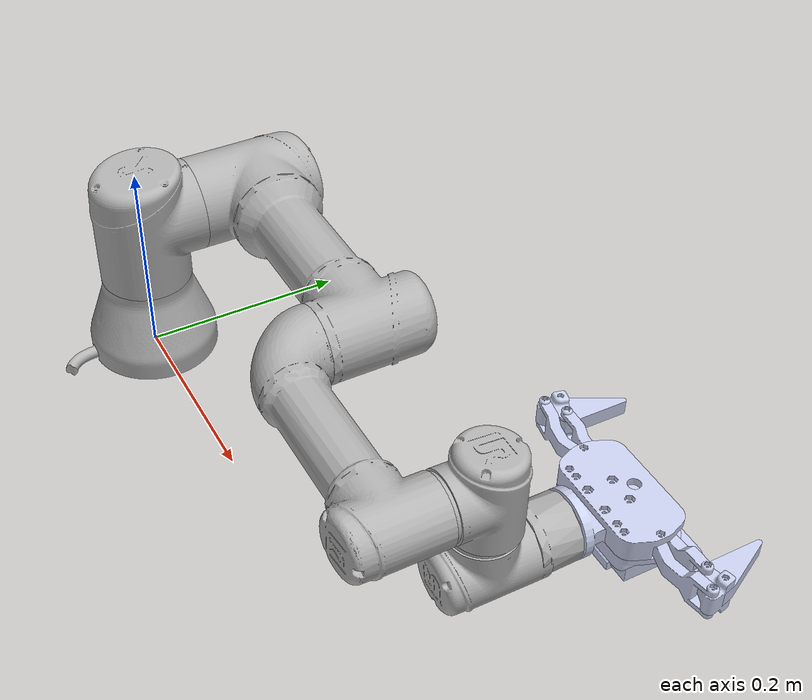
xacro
<?xml version="1.0"?>
<robot xmlns:xacro="http://ros.org/wiki/xacro"
       name="ur3" >

  <!-- world -->
  <link name="world" />

  <!-- common stuff -->
  <xacro:include filename="$(find ur_description)/urdf/common.gazebo.xacro" />

  <!-- ur3 -->

  <xacro:include filename="$(find ur3_with_gripper_ur_moveit_config)/urdf/arm.urdf" />
  <xacro:ur3_robot parent="world" prefix="" joint_limited="false">
	<origin xyz="0.0 0.0 0.0" rpy="0.0 0.0 0.0" />
  </xacro:ur3_robot>

  <!-- gripper -->
  <xacro:include filename="$(find ur3_with_gripper_ur_moveit_config)/urdf/gripper.urdf" />
  <xacro:gripper_v5 parent="ee_link" >
	<origin xyz="0.055 0.0 0.015" rpy="0 0 1.5708" />
  </xacro:gripper_v5>

</robot>

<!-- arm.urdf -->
<robot name="ur3" xmlns:xacro="http://ros.org/wiki/xacro">

<!--
  Author: Felix Messmer
-->

  <xacro:include filename="$(find ur_description)/urdf/ur.transmission.xacro" />
  <xacro:include filename="$(find ur_description)/urdf/ur.gazebo.xacro" />

  <!-- Inertia parameters -->
  <xacro:property name="base_mass" value="2.0" />  <!-- This mass might be incorrect -->
  <xacro:property name="shoulder_mass" value="2.0" />
  <xacro:property name="upper_arm_mass" value="3.42" />
  <xacro:property name="forearm_mass" value="1.26" />
  <xacro:property name="wrist_1_mass" value="0.8" />
  <xacro:property name="wrist_2_mass" value="0.8" />
  <xacro:property name="wrist_3_mass" value="0.35" />

  <xacro:property name="shoulder_cog" value="0.0 -0.02 0.0" />
  <xacro:property name="upper_arm_cog" value="0.13 0.0 0.1157" />
  <xacro:property name="forearm_cog" value="0.05 0.0 0.0238" />
  <xacro:property name="wrist_1_cog" value="0.0 0.0 0.01" />
  <xacro:property name="wrist_2_cog" value="0.0 0.0 0.01" />
  <xacro:property name="wrist_3_cog" value="0.0 0.0 -0.02" />

  <!-- Kinematic model -->
  <!-- Properties from urcontrol.conf -->
  <xacro:property name="ur3_d1" value="0.1519" />
  <xacro:property name="ur3_a2" value="-0.24365" />
  <xacro:property name="ur3_a3" value="-0.21325" />
  <xacro:property name="ur3_d4" value="0.11235" />
  <xacro:property name="ur3_d5" value="0.08535" />
  <xacro:property name="ur3_d6" value="0.0819" />

  <!-- Arbitrary offsets for shoulder/elbow joints -->
  <xacro:property name="shoulder_offset" value="0.1198" />  <!-- measured from model -->
  <xacro:property name="elbow_offset" value="-0.0925" /> <!-- measured from model -->

  <!-- link lengths used in model -->
  <xacro:property name="shoulder_height" value="${ur3_d1}" />
  <xacro:property name="upper_arm_length" value="${-ur3_a2}" />
  <xacro:property name="forearm_length" value="${-ur3_a3}" />
  <xacro:property name="wrist_1_length" value="${ur3_d4 - elbow_offset - shoulder_offset}" />
  <xacro:property name="wrist_2_length" value="${ur3_d5}" />
  <xacro:property name="wrist_3_length" value="${ur3_d6}" />

  <xacro:macro name="cylinder_inertial" params="radius length mass *origin">
    <inertial>
      <mass value="${mass}" />
      <xacro:insert_block name="origin" />
      <inertia ixx="${0.0833333 * mass * (3 * radius * radius + length * length)}" ixy="0.0" ixz="0.0"
        iyy="${0.0833333 * mass * (3 * radius * radius + length * length)}" iyz="0.0"
        izz="${0.5 * mass * radius * radius}" />
    </inertial>
  </xacro:macro>

  <xacro:macro name="ur3_robot" params="parent prefix joint_limited
     shoulder_pan_lower_limit:=${-pi}    shoulder_pan_upper_limit:=${pi}
     shoulder_lift_lower_limit:=${-pi}    shoulder_lift_upper_limit:=${pi}
     elbow_joint_lower_limit:=${-pi}    elbow_joint_upper_limit:=${pi}
     wrist_1_lower_limit:=${-pi}    wrist_1_upper_limit:=${pi}
     wrist_2_lower_limit:=${-pi}    wrist_2_upper_limit:=${pi}
     wrist_3_lower_limit:=${-pi}    wrist_3_upper_limit:=${pi} *origin">

<!-- world - base_link joint -->
	<joint name="arm_world_joint" type="fixed" >
			<xacro:insert_block name="origin" />
			<parent link="${parent}" />
			<child link="base_link" />
	</joint>

    <link name="${prefix}base_link" >
      <visual>
        <geometry>
          <mesh filename="package://ur_description/meshes/ur3/visual/base.dae"/>
        </geometry>
        <material name="LightGrey">
          <color rgba="0.7 0.7 0.7 1.0"/>
        </material>
      </visual>
      <collision>
        <geometry>
          <mesh filename="package://ur_description/meshes/ur3/collision/base.stl"/>
        </geometry>
      </collision>
      <xacro:cylinder_inertial radius="0.075" length="0.038" mass="${base_mass}">
        <origin xyz="0.0 0.0 0.0" rpy="0 0 0" />
      </xacro:cylinder_inertial>
    </link>

    <joint name="${prefix}shoulder_pan_joint" type="revolute">
      <parent link="${prefix}base_link" />
      <child link = "${prefix}shoulder_link" />
      <origin xyz="0.0 0.0 ${shoulder_height}" rpy="0.0 0.0 0.0" />
      <axis xyz="0 0 1" />
      <xacro:unless value="${joint_limited}">
        <limit lower="${-2.0 * pi}" upper="${2.0 * pi}" effort="330.0" velocity="2.16"/>
      </xacro:unless>
      <xacro:if value="${joint_limited}">
        <limit lower="${shoulder_pan_lower_limit}" upper="${shoulder_pan_upper_limit}" effort="330.0" velocity="2.16"/>
      </xacro:if>
      <dynamics damping="0.0" friction="0.0"/>
    </joint>

    <link name="${prefix}shoulder_link">
      <visual>
        <geometry>
          <mesh filename="package://ur_description/meshes/ur3/visual/shoulder.dae"/>
        </geometry>
        <material name="LightGrey">
          <color rgba="0.7 0.7 0.7 1.0"/>
        </material>
      </visual>
      <collision>
        <geometry>
          <mesh filename="package://ur_description/meshes/ur3/collision/shoulder.stl"/>
        </geometry>
      </collision>
      <xacro:cylinder_inertial radius="0.075" length="0.178" mass="${shoulder_mass}">
        <origin xyz="0.0 0.0 0.0" rpy="0 0 0" />
      </xacro:cylinder_inertial>
    </link>

    <joint name="${prefix}shoulder_lift_joint" type="revolute">
      <parent link="${prefix}shoulder_link" />
      <child link = "${prefix}upper_arm_link" />
      <origin xyz="0.0 ${shoulder_offset} 0.0" rpy="0.0 ${pi / 2.0} 0.0" />
      <axis xyz="0 1 0" />
      <xacro:unless value="${joint_limited}">
        <limit lower="${-2.0 * pi}" upper="${2.0 * pi}" effort="330.0" velocity="2.16"/>
      </xacro:unless>
      <xacro:if value="${joint_limited}">
        <limit lower="${shoulder_lift_lower_limit}" upper="${shoulder_lift_upper_limit}" effort="330.0" velocity="2.16"/>
      </xacro:if>
      <dynamics damping="0.0" friction="0.0"/>
    </joint>

    <link name="${prefix}upper_arm_link">
      <visual>
        <geometry>
          <mesh filename="package://ur_description/meshes/ur3/visual/upperarm.dae"/>
        </geometry>
        <material name="LightGrey">
          <color rgba="0.7 0.7 0.7 1.0"/>
        </material>
      </visual>
      <collision>
        <geometry>
          <mesh filename="package://ur_description/meshes/ur3/collision/upperarm.stl"/>
        </geometry>
      </collision>
      <xacro:cylinder_inertial radius="0.075" length="${-ur3_a2}" mass="${upper_arm_mass}">
        <origin xyz="0.0 0.0 ${-ur3_a2/2.0}" rpy="0 0 0" />
      </xacro:cylinder_inertial>
    </link>

    <joint name="${prefix}elbow_joint" type="revolute">
      <parent link="${prefix}upper_arm_link" />
      <child link = "${prefix}forearm_link" />
      <origin xyz="0.0 ${elbow_offset} ${upper_arm_length}" rpy="0.0 0.0 0.0" />
      <axis xyz="0 1 0" />
      <xacro:unless value="${joint_limited}">
        <limit lower="${-pi}" upper="${pi}" effort="150.0" velocity="3.15"/>
      </xacro:unless>
      <xacro:if value="${joint_limited}">
        <limit lower="${elbow_joint_lower_limit}" upper="${elbow_joint_upper_limit}" effort="150.0" velocity="3.15"/>
      </xacro:if>
      <dynamics damping="0.0" friction="0.0"/>
    </joint>

    <link name="${prefix}forearm_link">
      <visual>
         <geometry>
          <mesh filename="package://ur_description/meshes/ur3/visual/forearm.dae"/>
        </geometry>
        <material name="LightGrey">
          <color rgba="0.7 0.7 0.7 1.0"/>
        </material>
      </visual>
      <collision>
        <geometry>
          <mesh filename="package://ur_description/meshes/ur3/collision/forearm.stl"/>
        </geometry>
      </collision>
      <xacro:cylinder_inertial radius="0.075" length="${-ur3_a3}" mass="${forearm_mass}">
        <origin xyz="0.0 0.0 ${-ur3_a3/2.0}" rpy="0 0 0" />
      </xacro:cylinder_inertial>
    </link>

    <joint name="${prefix}wrist_1_joint" type="revolute">
      <parent link="${prefix}forearm_link" />
      <child link = "${prefix}wrist_1_link" />
      <origin xyz="0.0 0.0 ${forearm_length}" rpy="0.0 ${pi / 2.0} 0.0" />
      <axis xyz="0 1 0" />
      <xacro:unless value="${joint_limited}">
        <limit lower="${-2.0 * pi}" upper="${2.0 * pi}" effort="54.0" velocity="3.2"/>
      </xacro:unless>
      <xacro:if value="${joint_limited}">
        <limit lower="${wrist_1_lower_limit}" upper="${wrist_1_upper_limit}" effort="54.0" velocity="3.2"/>
      </xacro:if>
      <dynamics damping="0.0" friction="0.0"/>
    </joint>

    <link name="${prefix}wrist_1_link">
      <visual>
        <geometry>
          <mesh filename="package://ur_description/meshes/ur3/visual/wrist1.dae"/>
        </geometry>
        <material name="LightGrey">
          <color rgba="0.7 0.7 0.7 1.0"/>
        </material>
      </visual>
      <collision>
        <geometry>
          <mesh filename="package://ur_description/meshes/ur3/collision/wrist1.stl"/>
        </geometry>
      </collision>
      <xacro:cylinder_inertial radius="0.075" length="0.12" mass="${wrist_1_mass}">
        <origin xyz="0.0 0.0 0.0" rpy="0 0 0" />
      </xacro:cylinder_inertial>
    </link>

    <joint name="${prefix}wrist_2_joint" type="revolute">
      <parent link="${prefix}wrist_1_link" />
      <child link = "${prefix}wrist_2_link" />
      <origin xyz="0.0 ${wrist_1_length} 0.0" rpy="0.0 0.0 0.0" />
      <axis xyz="0 0 1" />
      <xacro:unless value="${joint_limited}">
        <limit lower="${-2.0 * pi}" upper="${2.0 * pi}" effort="54.0" velocity="3.2"/>
      </xacro:unless>
      <xacro:if value="${joint_limited}">
        <limit lower="${wrist_2_lower_limit}" upper="${wrist_2_upper_limit}" effort="54.0" velocity="3.2"/>
      </xacro:if>
      <dynamics damping="0.0" friction="0.0"/>
    </joint>

    <link name="${prefix}wrist_2_link">
      <visual>
        <geometry>
          <mesh filename="package://ur_description/meshes/ur3/visual/wrist2.dae"/>
        </geometry>
        <material name="LightGrey">
          <color rgba="0.7 0.7 0.7 1.0"/>
        </material>
      </visual>
      <collision>
        <geometry>
          <mesh filename="package://ur_description/meshes/ur3/collision/wrist2.stl"/>
        </geometry>
      </collision>
      <xacro:cylinder_inertial radius="0.075" length="0.12" mass="${wrist_2_mass}">
        <origin xyz="0.0 0.0 0.0" rpy="0 0 0" />
      </xacro:cylinder_inertial>
    </link>

    <joint name="${prefix}wrist_3_joint" type="revolute">
      <parent link="${prefix}wrist_2_link" />
      <child link = "${prefix}wrist_3_link" />
      <origin xyz="0.0 0.0 ${wrist_2_length}" rpy="0.0 0.0 0.0" />
      <axis xyz="0 1 0" />
      <xacro:unless value="${joint_limited}">
        <limit lower="${-2.0 * pi}" upper="${2.0 * pi}" effort="54.0" velocity="3.2"/>
      </xacro:unless>
      <xacro:if value="${joint_limited}">
        <limit lower="${wrist_3_lower_limit}" upper="${wrist_3_upper_limit}" effort="54.0" velocity="3.2"/>
      </xacro:if>
      <dynamics damping="0.0" friction="0.0"/>
    </joint>

    <link name="${prefix}wrist_3_link">
      <visual>
        <geometry>
          <mesh filename="package://ur_description/meshes/ur3/visual/wrist3.dae"/>
        </geometry>
        <material name="LightGrey">
          <color rgba="0.7 0.7 0.7 1.0"/>
        </material>
      </visual>
      <collision>
        <geometry>
          <mesh filename="package://ur_description/meshes/ur3/collision/wrist3.stl"/>
        </geometry>
      </collision>
      <xacro:cylinder_inertial radius="0.075" length="0.12" mass="${wrist_3_mass}">
        <origin xyz="0.0 0.0 0.0" rpy="0 0 0" />
      </xacro:cylinder_inertial>
    </link>

    <joint name="${prefix}ee_fixed_joint" type="fixed">
      <parent link="${prefix}wrist_3_link" />
      <child link = "${prefix}ee_link" />
      <origin xyz="0.0 ${wrist_3_length} 0.0" rpy="0.0 0.0 ${pi/2.0}" />
    </joint>

    <link name="${prefix}ee_link">
      <collision>
        <geometry>
          <box size="0.01 0.01 0.01"/>
        </geometry>
        <origin rpy="0 0 0" xyz="-0.01 0 0"/>
      </collision>
    </link>

    <xacro:ur_arm_transmission prefix="${prefix}" />
    <xacro:ur_arm_gazebo prefix="${prefix}" />

    <!-- ROS base_link to UR 'Base' Coordinates transform -->
    <link name="${prefix}base"/>
    <joint name="${prefix}base_link-base_fixed_joint" type="fixed">
      <!-- NOTE: this rotation is only needed as long as base_link itself is
                 not corrected wrt the real robot (ie: rotated over 180
                 degrees)
      -->
      <origin xyz="0 0 0" rpy="0 0 ${-pi}"/>
      <parent link="${prefix}base_link"/>
      <child link="${prefix}base"/>
    </joint>

    <!-- Frame coincident with all-zeros TCP on UR controller -->
    <link name="${prefix}tool0"/>
    <joint name="${prefix}wrist_3_link-tool0_fixed_joint" type="fixed">
      <origin xyz="0 ${wrist_3_length} 0" rpy="${pi/-2.0} 0 0"/>
      <parent link="${prefix}wrist_3_link"/>
      <child link="${prefix}tool0"/>
    </joint>

  </xacro:macro>
</robot>

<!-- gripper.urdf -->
<robot name="gripper" xmlns:xacro="http://ros.org/wiki/xacro">
	<xacro:macro name="gripper_v5" params="parent *origin">

<!-- joint between wrist_3_link and base_link_gripper -->
		<joint name="arm_gripper_joint" type="fixed" >
			<xacro:insert_block name="origin" />
			<parent link="${parent}" />
			<child link="base_link_gripper" />
		</joint>

	 <link
		  name="base_link_gripper">
		  <inertial>
		    <origin
		      xyz="8.2799E-10 0.032097 -0.017558"
		      rpy="0 0 0" />
		    <mass
		      value="0.062951" />
		    <inertia
		      ixx="0"
		      ixy="0"
		      ixz="0"
		      iyy="0"
		      iyz="0"
		      izz="0" />
		  </inertial>
		  <visual>
		    <origin
		      xyz="0 0 0"
		      rpy="0 0 0" />
		    <geometry>
		      <mesh
		        filename="package://gripper_ur/meshes/base_link.STL" />
		    </geometry>
		    <material
		      name="">
		      <color
		        rgba="0.79216 0.81961 0.93333 1" />
		    </material>
		  </visual>
		  <collision>
		    <origin
		      xyz="0 0 0"
		      rpy="0 0 0" />
		    <geometry>
		      <mesh
		        filename="package://gripper_ur/meshes/base_link.STL" />
		    </geometry>
		  </collision>
		</link>
		<link
		  name="base_plate_link">
		  <inertial>
		    <origin
		      xyz="-7.0378E-12 0.0041256 0.0062315"
		      rpy="0 0 0" />
		    <mass
		      value="0.064589" />
		    <inertia
		      ixx="0"
		      ixy="0"
		      ixz="0"
		      iyy="0"
		      iyz="0"
		      izz="0" />
		  </inertial>
		  <visual>
		    <origin
		      xyz="0 0 0"
		      rpy="0 0 0" />
		    <geometry>
		      <mesh
		        filename="package://gripper_ur/meshes/base_plate_link.STL" />
		    </geometry>
		    <material
		      name="">
		      <color
		        rgba="0.79216 0.81961 0.93333 1" />
		    </material>
		  </visual>
		  <collision>
		    <origin
		      xyz="0 0 0"
		      rpy="0 0 0" />
		    <geometry>
		      <mesh
		        filename="package://gripper_ur/meshes/base_plate_link.STL" />
		    </geometry>
		  </collision>
		</link>
		<joint
		  name="base_plate"
		  type="fixed">
		  <origin
		    xyz="0 0 -0.0325"
		    rpy="0 0 0" />
		  <parent
		    link="base_link_gripper" />
		  <child
		    link="base_plate_link" />
		  <axis
		    xyz="0 0 0" />
		</joint>
		<link
		  name="joint_left_link">
		  <inertial>
		    <origin
		      xyz="-0.00096719 0.00018393 -0.029739"
		      rpy="0 0 0" />
		    <mass
		      value="0.01181" />
		    <inertia
		      ixx="0"
		      ixy="0"
		      ixz="0"
		      iyy="0"
		      iyz="0"
		      izz="0" />
		  </inertial>
		  <visual>
		    <origin
		      xyz="0 0 0"
		      rpy="0 0 0" />
		    <geometry>
		      <mesh
		        filename="package://gripper_ur/meshes/joint_left_link.STL" />
		    </geometry>
		    <material
		      name="">
		      <color
		        rgba="0.79216 0.81961 0.93333 1" />
		    </material>
		  </visual>
		  <collision>
		    <origin
		      xyz="0 0 0"
		      rpy="0 0 0" />
		    <geometry>
		      <mesh
		        filename="package://gripper_ur/meshes/joint_left_link.STL" />
		    </geometry>
		  </collision>
		</link>
		<joint
		  name="joint_left"
		  type="continuous">
		  <origin
		    xyz="0.03475 -0.01025 0.015"
		    rpy="-1.5708 6.123E-17 1.5708" />
		  <parent
		    link="base_plate_link" />
		  <child
		    link="joint_left_link" />
		  <axis
		    xyz="0 -1 0" />
		</joint>
		<link
		  name="finger_left_link">
		  <inertial>
		    <origin
		      xyz="-0.0061859 -4.5161E-05 -0.01391"
		      rpy="0 0 0" />
		    <mass
		      value="0.0081518" />
		    <inertia
		      ixx="0"
		      ixy="0"
		      ixz="0"
		      iyy="0"
		      iyz="0"
		      izz="0" />
		  </inertial>
		  <visual>
		    <origin
		      xyz="0 0 0"
		      rpy="0 0 0" />
		    <geometry>
		      <mesh
		        filename="package://gripper_ur/meshes/finger_left_link.STL" />
		    </geometry>
		    <material
		      name="">
		      <color
		        rgba="0.79216 0.81961 0.93333 1" />
		    </material>
		  </visual>
		  <collision>
		    <origin
		      xyz="0 0 0"
		      rpy="0 0 0" />
		    <geometry>
		      <mesh
		        filename="package://gripper_ur/meshes/finger_left_link.STL" />
		    </geometry>
		  </collision>
		</link>
		<joint
		  name="Joint_finger_left"
		  type="continuous">
		  <origin
		    xyz="0 0 -0.065"
		    rpy="9.3543E-15 -0.47313 -4.2625E-15" />
		  <parent
		    link="joint_left_link" />
		  <child
		    link="finger_left_link" />
		  <axis
		    xyz="0 -1 0" />
		</joint>
		<link
		  name="festo_left_link">
		  <inertial>
		    <origin
		      xyz="8.9608E-05 0.025359 -1.6653E-16"
		      rpy="0 0 0" />
		    <mass
		      value="0.01909" />
		    <inertia
		      ixx="0"
		      ixy="0"
		      ixz="0"
		      iyy="0"
		      iyz="0"
		      izz="0" />
		  </inertial>
		  <visual>
		    <origin
		      xyz="0 0 0"
		      rpy="0 0 0" />
		    <geometry>
		      <mesh
		        filename="package://gripper_ur/meshes/festo_left_link.STL" />
		    </geometry>
		    <material
		      name="">
		      <color
		        rgba="0.79216 0.81961 0.93333 1" />
		    </material>
		  </visual>
		  <collision>
		    <origin
		      xyz="0 0 0"
		      rpy="0 0 0" />
		    <geometry>
		      <mesh
		        filename="package://gripper_ur/meshes/festo_left_link.STL" />
		    </geometry>
		  </collision>
		</link>
		<joint
		  name="joint_festo_left"
		  type="fixed">
		  <origin
		    xyz="-0.0028917 0 -0.0097109"
		    rpy="1.5708 0.85495 -3.1416" />
		  <parent
		    link="finger_left_link" />
		  <child
		    link="festo_left_link" />
		  <axis
		    xyz="0 0 0" />
		</joint>
		<link
		  name="joint_right_link">
		  <inertial>
		    <origin
		      xyz="0.00049585 0.00018393 -0.02975"
		      rpy="0 0 0" />
		    <mass
		      value="0.01181" />
		    <inertia
		      ixx="0"
		      ixy="0"
		      ixz="0"
		      iyy="0"
		      iyz="0"
		      izz="0" />
		  </inertial>
		  <visual>
		    <origin
		      xyz="0 0 0"
		      rpy="0 0 0" />
		    <geometry>
		      <mesh
		        filename="package://gripper_ur/meshes/joint_right_link.STL" />
		    </geometry>
		    <material
		      name="">
		      <color
		        rgba="0.79216 0.81961 0.93333 1" />
		    </material>
		  </visual>
		  <collision>
		    <origin
		      xyz="0 0 0"
		      rpy="0 0 0" />
		    <geometry>
		      <mesh
		        filename="package://gripper_ur/meshes/joint_right_link.STL" />
		    </geometry>
		  </collision>
		</link>
		<joint
		  name="joint_right"
		  type="continuous">
		  <origin
		    xyz="-0.03475 -0.01025 0.015"
		    rpy="-1.5708 -1.2472E-16 -1.555" />
		  <parent
		    link="base_plate_link" />
		  <child
		    link="joint_right_link" />
		  <axis
		    xyz="0 -1 0" />
		</joint>
		<link
		  name="finger_right_link">
		  <inertial>
		    <origin
		      xyz="-0.0052726 4.5161E-05 -0.014386"
		      rpy="0 0 0" />
		    <mass
		      value="0.0081518" />
		    <inertia
		      ixx="0"
		      ixy="0"
		      ixz="0"
		      iyy="0"
		      iyz="0"
		      izz="0" />
		  </inertial>
		  <visual>
		    <origin
		      xyz="0 0 0"
		      rpy="0 0 0" />
		    <geometry>
		      <mesh
		        filename="package://gripper_ur/meshes/finger_right_link.STL" />
		    </geometry>
		    <material
		      name="">
		      <color
		        rgba="0.79216 0.81961 0.93333 1" />
		    </material>
		  </visual>
		  <collision>
		    <origin
		      xyz="0 0 0"
		      rpy="0 0 0" />
		    <geometry>
		      <mesh
		        filename="package://gripper_ur/meshes/finger_right_link.STL" />
		    </geometry>
		  </collision>
		</link>
		<joint
		  name="joint_finger_right"
		  type="continuous">
		  <origin
		    xyz="0 0 -0.065"
		    rpy="-7.8621E-15 -0.48898 -3.1416" />
		  <parent
		    link="joint_right_link" />
		  <child
		    link="finger_right_link" />
		  <axis
		    xyz="0 1 0" />
		</joint>
		<link
		  name="festo_right_link">
		  <inertial>
		    <origin
		      xyz="8.9608E-05 0.025359 -3.5388E-16"
		      rpy="0 0 0" />
		    <mass
		      value="0.01909" />
		    <inertia
		      ixx="0"
		      ixy="0"
		      ixz="0"
		      iyy="0"
		      iyz="0"
		      izz="0" />
		  </inertial>
		  <visual>
		    <origin
		      xyz="0 0 0"
		      rpy="0 0 0" />
		    <geometry>
		      <mesh
		        filename="package://gripper_ur/meshes/festo_right_link.STL" />
		    </geometry>
		    <material
		      name="">
		      <color
		        rgba="0.79216 0.81961 0.93333 1" />
		    </material>
		  </visual>
		  <collision>
		    <origin
		      xyz="0 0 0"
		      rpy="0 0 0" />
		    <geometry>
		      <mesh
		        filename="package://gripper_ur/meshes/festo_right_link.STL" />
		    </geometry>
		  </collision>
		</link>
		<joint
		  name="joint_festo_right"
		  type="fixed">
		  <origin
		    xyz="-0.0019784 0 -0.010187"
		    rpy="1.5708 0.85495 -3.1416" />
		  <parent
		    link="finger_right_link" />
		  <child
		    link="festo_right_link" />
		  <axis
		    xyz="0 0 0" />
		</joint>
		<link
		  name="base_plate_two_link">
		  <inertial>
		    <origin
		      xyz="1.1632E-07 0.0022711 -0.0027948"
		      rpy="0 0 0" />
		    <mass
		      value="0.10598" />
		    <inertia
		      ixx="0"
		      ixy="0"
		      ixz="0"
		      iyy="0"
		      iyz="0"
		      izz="0" />
		  </inertial>
		  <visual>
		    <origin
		      xyz="0 0 0"
		      rpy="0 0 0" />
		    <geometry>
		      <mesh
		        filename="package://gripper_ur/meshes/base_plate_two_link.STL" />
		    </geometry>
		    <material
		      name="">
		      <color
		        rgba="0.79216 0.81961 0.93333 1" />
		    </material>
		  </visual>
		  <collision>
		    <origin
		      xyz="0 0 0"
		      rpy="0 0 0" />
		    <geometry>
		      <mesh
		        filename="package://gripper_ur/meshes/base_plate_two_link.STL" />
		    </geometry>
		  </collision>
		</link>
		<joint
		  name="joint_base_plate_two"
		  type="fixed">
		  <origin
		    xyz="0 0 0.0325"
		    rpy="3.1416 0 0" />
		  <parent
		    link="base_plate_link" />
		  <child
		    link="base_plate_two_link" />
		  <axis
		    xyz="0 0 0" />
		</joint>
		<link
		  name="camera_link">
		  <inertial>
		    <origin
		      xyz="0.00010101 0.0086143 -0.013617"
		      rpy="0 0 0" />
		    <mass
		      value="0.083429" />
		    <inertia
		      ixx="9.7093E-07"
		      ixy="2.7743E-09"
		      ixz="1.0334E-11"
		      iyy="6.1263E-08"
		      iyz="-3.2036E-09"
		      izz="1.0322E-06" />
		  </inertial>
		  <visual>
		    <origin
		      xyz="0 0 0"
		      rpy="0 0 0" />
		    <geometry>
		      <mesh
		        filename="package://gripper_ur/meshes/camera_link.STL" />
		    </geometry>
		    <material
		      name="">
		      <color
		        rgba="0.79216 0.81961 0.93333 1" />
		    </material>
		  </visual>
		  <collision>
		    <origin
		      xyz="0 0 0"
		      rpy="0 0 0" />
		    <geometry>
		      <mesh
		        filename="package://gripper_ur/meshes/camera_link.STL" />
		    </geometry>
		  </collision>
		</link>
		<joint
		  name="joint_camera"
		  type="fixed">
		  <origin
		    xyz="0 0.034 -0.008"
		    rpy="6.123E-17 6.123E-17 -3.1416" />
		  <parent
		    link="base_plate_two_link" />
		  <child
		    link="camera_link" />
		  <axis
		    xyz="0 0 0" />
		</joint>
		<link
		  name="servo_right_link">
		  <inertial>
		    <origin
		      xyz="1.9207E-08 0.00028935 -0.019039"
		      rpy="0 0 0" />
		    <mass
		      value="0.029949" />
		    <inertia
		      ixx="0"
		      ixy="0"
		      ixz="0"
		      iyy="0"
		      iyz="0"
		      izz="0" />
		  </inertial>
		  <visual>
		    <origin
		      xyz="0 0 0"
		      rpy="0 0 0" />
		    <geometry>
		      <mesh
		        filename="package://gripper_ur/meshes/servo_right_link.STL" />
		    </geometry>
		    <material
		      name="">
		      <color
		        rgba="0.79216 0.81961 0.93333 1" />
		    </material>
		  </visual>
		  <collision>
		    <origin
		      xyz="0 0 0"
		      rpy="0 0 0" />
		    <geometry>
		      <mesh
		        filename="package://gripper_ur/meshes/servo_right_link.STL" />
		    </geometry>
		  </collision>
		</link>
		<joint
		  name="joint_servo_right"
		  type="fixed">
		  <origin
		    xyz="-0.03475 0 0.061"
		    rpy="1.7384E-16 3.0322E-16 3.1416" />
		  <parent
		    link="base_plate_link" />
		  <child
		    link="servo_right_link" />
		  <axis
		    xyz="0 0 0" />
		</joint>
		<link
		  name="servo_left_link">
		  <inertial>
		    <origin
		      xyz="1.9207E-08 0.00028935 -0.019039"
		      rpy="0 0 0" />
		    <mass
		      value="0.029949" />
		    <inertia
		      ixx="0"
		      ixy="0"
		      ixz="0"
		      iyy="0"
		      iyz="0"
		      izz="0" />
		  </inertial>
		  <visual>
		    <origin
		      xyz="0 0 0"
		      rpy="0 0 0" />
		    <geometry>
		      <mesh
		        filename="package://gripper_ur/meshes/servo_left_link.STL" />
		    </geometry>
		    <material
		      name="">
		      <color
		        rgba="0.79216 0.81961 0.93333 1" />
		    </material>
		  </visual>
		  <collision>
		    <origin
		      xyz="0 0 0"
		      rpy="0 0 0" />
		    <geometry>
		      <mesh
		        filename="package://gripper_ur/meshes/servo_left_link.STL" />
		    </geometry>
		  </collision>
		</link>
		<joint
		  name="joint_servo_lleft"
		  type="fixed">
		  <origin
		    xyz="0.03475 0 0.061"
		    rpy="1.7348E-16 6.123E-17 3.1416" />
		  <parent
		    link="base_plate_link" />
		  <child
		    link="servo_left_link" />
		  <axis
		    xyz="0 0 0" />
		</joint>
		<link
		  name="finger_two_right_link">
		  <inertial>
		    <origin
		      xyz="-0.0313 0.0081481 3.3286E-05"
		      rpy="0 0 0" />
		    <mass
		      value="0.011213" />
		    <inertia
		      ixx="0"
		      ixy="0"
		      ixz="0"
		      iyy="0"
		      iyz="0"
		      izz="0" />
		  </inertial>
		  <visual>
		    <origin
		      xyz="0 0 0"
		      rpy="0 0 0" />
		    <geometry>
		      <mesh
		        filename="package://gripper_ur/meshes/finger_two_right_link.STL" />
		    </geometry>
		    <material
		      name="">
		      <color
		        rgba="0.79216 0.81961 0.93333 1" />
		    </material>
		  </visual>
		  <collision>
		    <origin
		      xyz="0 0 0"
		      rpy="0 0 0" />
		    <geometry>
		      <mesh
		        filename="package://gripper_ur/meshes/finger_two_right_link.STL" />
		    </geometry>
		  </collision>
		</link>
		<joint
		  name="joint_finger_two_right"
		  type="continuous">
		  <origin
		    xyz="-0.055 0 0.015"
		    rpy="4.5212E-16 3.3777E-16 0.18526" />
		  <parent
		    link="base_plate_link" />
		  <child
		    link="finger_two_right_link" />
		  <axis
		    xyz="0 1 0" />
		</joint>
		<link
		  name="finger_two_left_link">
		  <inertial>
		    <origin
		      xyz="0.0081481 -0.031299 3.281E-05"
		      rpy="0 0 0" />
		    <mass
		      value="0.011213" />
		    <inertia
		      ixx="0"
		      ixy="0"
		      ixz="0"
		      iyy="0"
		      iyz="0"
		      izz="0" />
		  </inertial>
		  <visual>
		    <origin
		      xyz="0 0 0"
		      rpy="0 0 0" />
		    <geometry>
		      <mesh
		        filename="package://gripper_ur/meshes/finger_two_left_link.STL" />
		    </geometry>
		    <material
		      name="">
		      <color
		        rgba="0.79216 0.81961 0.93333 1" />
		    </material>
		  </visual>
		  <collision>
		    <origin
		      xyz="0 0 0"
		      rpy="0 0 0" />
		    <geometry>
		      <mesh
		        filename="package://gripper_ur/meshes/finger_two_left_link.STL" />
		    </geometry>
		  </collision>
		</link>
		<joint
		  name="joint_finger_two_left"
		  type="continuous">
		  <origin
		    xyz="0.055 0 0.015"
		    rpy="-9.6748E-17 1.0664E-16 1.3855" />
		  <parent
		    link="base_plate_link" />
		  <child
		    link="finger_two_left_link" />
		  <axis
		    xyz="0 1 0" />
		</joint>
	</xacro:macro>
</robot>
